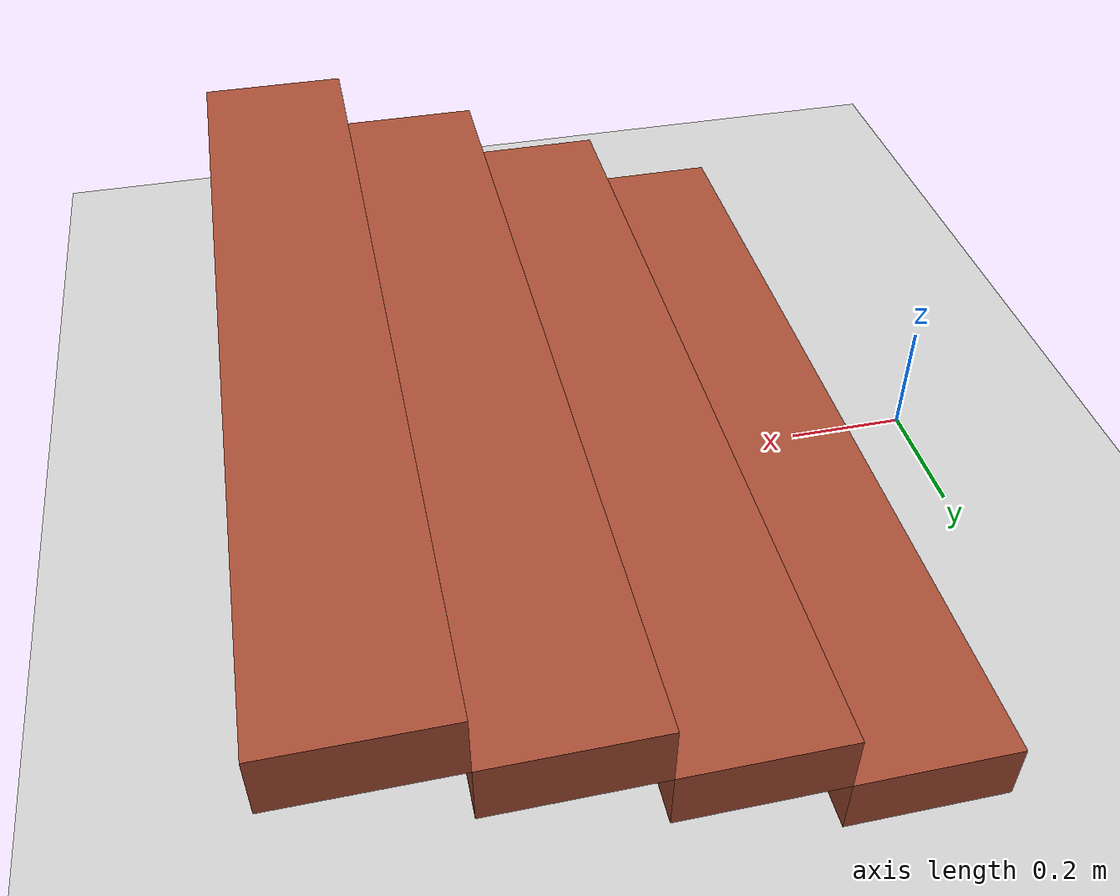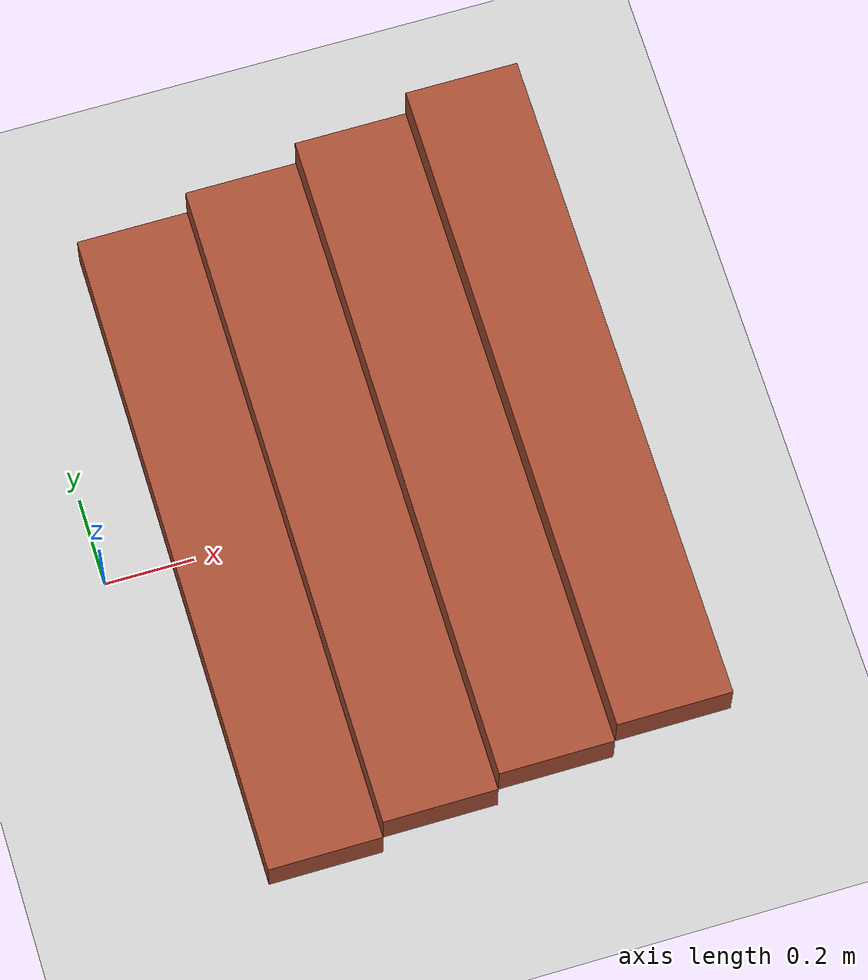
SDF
<sdf version="1.6">
 <world name="default">
  <gravity>0.000000 0.000000 -9.810000</gravity>
  <light name="sun" type="directional">
   <pose>0 0 10 0 -0 0</pose>
   <diffuse>0.8 0.8 0.8 1</diffuse>
   <specular>0.2 0.2 0.2 1</specular>
   <attenuation>
    <range>1000</range>
    <constant>0.9</constant>
    <linear>0.01</linear>
    <quadratic>0.001</quadratic>
   </attenuation>
   <direction>-0.5 0.1 -0.9</direction>
  </light>
  <scene><shadows>0</shadows></scene>
  <physics type="ode">
   <real_time_update_rate>1000.0</real_time_update_rate>
   <max_step_size>0.001</max_step_size>
   <real_time_factor>1</real_time_factor>
   <real_time_update_rate>1000</real_time_update_rate>
   <ode>
    <solver>
     <type>quick</type>
     <iters>200</iters>
     <precon_iters>0</precon_iters>
     <sor>1.4</sor>
     <use_dynamic_moi_rescaling>1</use_dynamic_moi_rescaling>
    </solver>
    <constraints>
     <cfm>0.000000</cfm>
     <erp>0.8</erp>
     <contact_max_correcting_vel>2000.000000</contact_max_correcting_vel>
     <contact_surface_layer>0.01000</contact_surface_layer>
    </constraints>
   </ode>
  </physics>
  <model name="ground_plane">
   <static>1</static>
   <link name="link">
    <collision name="collision">
     <geometry><plane><normal>0 0 1</normal><size>100 100</size></plane></geometry>
     <surface><friction><ode><mu>100</mu><mu2>50</mu2><fdir1>1 0 0</fdir1></ode></friction></surface>
    </collision>
    <visual name="visual">
     <cast_shadows>0</cast_shadows>
     <geometry><plane><normal>0 0 1</normal><size>100 100</size></plane></geometry>
     <material>
      <script><uri>file://media/materials/scripts/gazebo.material</uri><name>Gazebo/Grey</name></script>
     </material>
    </visual>
    <velocity_decay><linear>0</linear><angular>0</angular></velocity_decay>
   </link>
  </model>
  <model name="stairs4_x125_d250_h100">
   <pose>0.65 0 0 0 -0 0</pose>
   <link name="Stairs_3">
    <visual name="Stairs_3_Visual_0">
     <pose>-0.375 -0 0.05 0 -0 1.5708</pose>
     <geometry><box><size>1.5 0.25 0.1</size></box></geometry>
     <material>
      <script><uri>file://media/materials/scripts/gazebo.material</uri><name>Gazebo/Bricks</name></script>
      <ambient>1 1 1 1</ambient>
     </material>
     <meta><layer>0</layer></meta>
    </visual>
    <collision name="Stairs_3_Collision_0">
     <geometry><box><size>1.5 0.25 0.1</size></box></geometry>
     <pose>-0.375 -0 0.05 0 -0 1.5708</pose>
    </collision>
    <visual name="Stairs_3_Visual_1">
     <pose>-0.125 -0 0.15 0 -0 1.5708</pose>
     <geometry><box><size>1.5 0.25 0.1</size></box></geometry>
     <material>
      <script><uri>file://media/materials/scripts/gazebo.material</uri><name>Gazebo/Bricks</name></script>
      <ambient>1 1 1 1</ambient>
     </material>
     <meta><layer>0</layer></meta>
    </visual>
    <collision name="Stairs_3_Collision_1">
     <geometry><box><size>1.5 0.25 0.1</size></box></geometry>
     <pose>-0.125 -0 0.15 0 -0 1.5708</pose>
    </collision>
    <visual name="Stairs_3_Visual_2">
     <pose>0.125 0 0.25 0 -0 1.5708</pose>
     <geometry><box><size>1.5 0.25 0.1</size></box></geometry>
     <material>
      <script><uri>file://media/materials/scripts/gazebo.material</uri><name>Gazebo/Bricks</name></script>
      <ambient>1 1 1 1</ambient>
     </material>
     <meta><layer>0</layer></meta>
    </visual>
    <collision name="Stairs_3_Collision_2">
     <geometry><box><size>1.5 0.25 0.1</size></box></geometry>
     <pose>0.125 0 0.25 0 -0 1.5708</pose>
    </collision>
    <visual name="Stairs_3_Visual_3">
     <pose>0.375 0 0.35 0 -0 1.5708</pose>
     <geometry><box><size>1.5 0.25 0.1</size></box></geometry>
     <material>
      <script><uri>file://media/materials/scripts/gazebo.material</uri><name>Gazebo/Bricks</name></script>
      <ambient>1 1 1 1</ambient>
     </material>
     <meta><layer>0</layer></meta>
    </visual>
    <collision name="Stairs_3_Collision_3">
     <geometry><box><size>1.5 0.25 0.1</size></box></geometry>
     <pose>0.375 0 0.35 0 -0 1.5708</pose>
    </collision>
   </link>
   <static>1</static>
  </model>
 </world>
</sdf>
